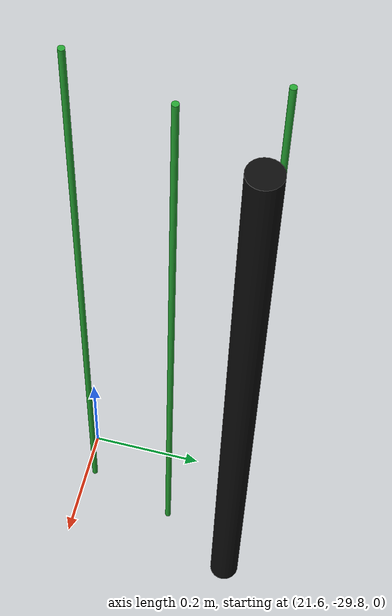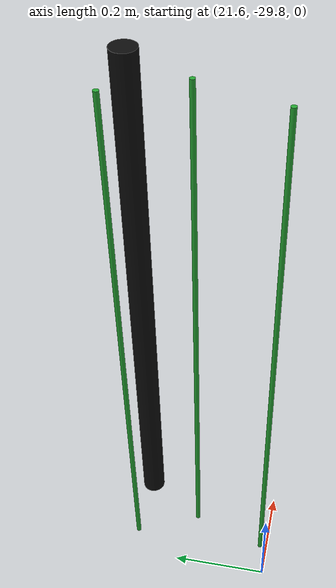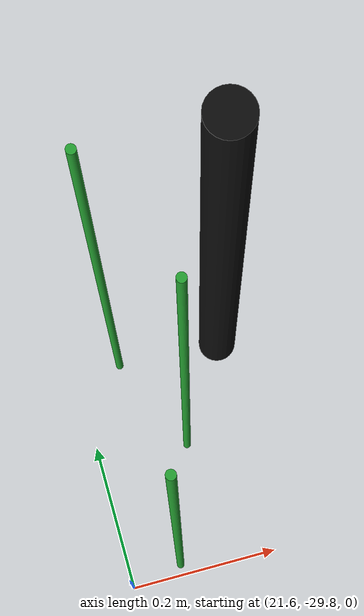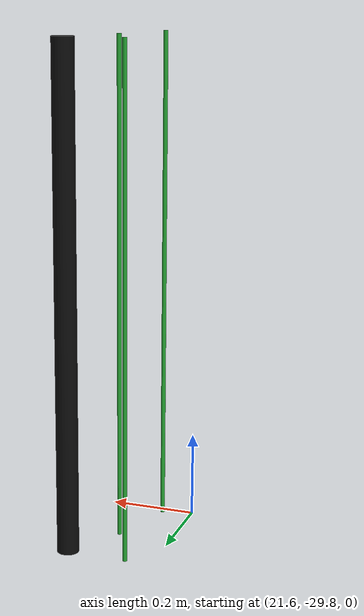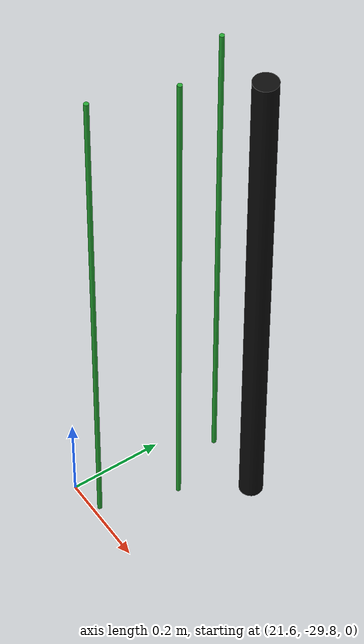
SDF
<sdf version="1.6">
 <world name="default">
  <model name="pole_15">
   <static>1</static>
   <pose>21.8 -29.5 0.575 0 -0 0</pose>
   <link name="link">
    <collision name="collision">
     <geometry><cylinder><length>1.15</length><radius>0.025</radius></cylinder></geometry>
    </collision>
    <visual name="visual">
     <geometry><cylinder><length>1.15</length><radius>0.025</radius></cylinder></geometry>
     <material>
      <script><uri>file://media/materials/scripts/gazebo.material</uri><name>Gazebo/Chrome</name></script>
      <shader type="vertex"><normal_map>__default__</normal_map></shader>
      <emissive>0.1 0.1 0.1 1</emissive>
      <specular>0.01 0.01 0.01 1</specular>
      <ambient>0.5 0.5 0.5 1</ambient>
      <diffuse>0.05 0.05 0.05 1</diffuse>
     </material>
    </visual>
   </link>
  </model>
  <model name="pole_27_clone_clone_145">
   <link name="link">
    <inertial>
     <mass>1</mass>
     <inertia><ixx>1</ixx><ixy>0</ixy><ixz>0</ixz><iyy>1</iyy><iyz>0</iyz><izz>1</izz></inertia>
    </inertial>
    <visual name="visual">
     <geometry><cylinder><length>1.15</length><radius>0.005</radius></cylinder></geometry>
     <material>
      <script><uri>file://media/materials/scripts/gazebo.material</uri><name>Gazebo/Green</name></script>
      <shader type="vertex"><normal_map>__default__</normal_map></shader>
      <emissive>0 0.1 0 1</emissive>
      <specular>0 0.01 0 1</specular>
      <ambient>0 0.5 0 1</ambient>
      <diffuse>0 0.05 0 1</diffuse>
     </material>
    </visual>
    <collision name="collision">
     <geometry><cylinder><radius>0.005</radius><length>1.15</length></cylinder></geometry>
     <surface>
      <friction>
       <ode><mu>1</mu><mu2>1</mu2><fdir1>0 0 0</fdir1><slip1>0</slip1><slip2>0</slip2></ode>
       <torsional>
        <coefficient>1</coefficient>
        <patch_radius>0</patch_radius>
        <surface_radius>0</surface_radius>
        <use_patch_radius>1</use_patch_radius>
        <ode><slip>0</slip></ode>
       </torsional>
      </friction>
      <bounce><restitution_coefficient>0</restitution_coefficient><threshold>1e+06</threshold></bounce>
      <contact>
       <collide_without_contact>0</collide_without_contact>
       <collide_without_contact_bitmask>1</collide_without_contact_bitmask>
       <collide_bitmask>1</collide_bitmask>
       <ode>
        <soft_cfm>0</soft_cfm>
        <soft_erp>0.2</soft_erp>
        <kp>1e+13</kp>
        <kd>1</kd>
        <max_vel>0.01</max_vel>
        <min_depth>0</min_depth>
       </ode>
       <bullet>
        <split_impulse>1</split_impulse>
        <split_impulse_penetration_threshold>-0.01</split_impulse_penetration_threshold>
        <soft_cfm>0</soft_cfm>
        <soft_erp>0.2</soft_erp>
        <kp>1e+13</kp>
        <kd>1</kd>
       </bullet>
      </contact>
     </surface>
    </collision>
   </link>
   <static>1</static>
   <pose>21.661 -29.4953 0.575 0 -0 0</pose>
  </model>
  <model name="pole_27_clone_clone_147">
   <link name="link">
    <inertial>
     <mass>1</mass>
     <inertia><ixx>1</ixx><ixy>0</ixy><ixz>0</ixz><iyy>1</iyy><iyz>0</iyz><izz>1</izz></inertia>
    </inertial>
    <visual name="visual">
     <geometry><cylinder><length>1.15</length><radius>0.005</radius></cylinder></geometry>
     <material>
      <script><uri>file://media/materials/scripts/gazebo.material</uri><name>Gazebo/Green</name></script>
      <shader type="vertex"><normal_map>__default__</normal_map></shader>
      <emissive>0 0.1 0 1</emissive>
      <specular>0 0.01 0 1</specular>
      <ambient>0 0.5 0 1</ambient>
      <diffuse>0 0.05 0 1</diffuse>
     </material>
    </visual>
    <collision name="collision">
     <geometry><cylinder><radius>0.005</radius><length>1.15</length></cylinder></geometry>
     <surface>
      <friction>
       <ode><mu>1</mu><mu2>1</mu2><fdir1>0 0 0</fdir1><slip1>0</slip1><slip2>0</slip2></ode>
       <torsional>
        <coefficient>1</coefficient>
        <patch_radius>0</patch_radius>
        <surface_radius>0</surface_radius>
        <use_patch_radius>1</use_patch_radius>
        <ode><slip>0</slip></ode>
       </torsional>
      </friction>
      <bounce><restitution_coefficient>0</restitution_coefficient><threshold>1e+06</threshold></bounce>
      <contact>
       <collide_without_contact>0</collide_without_contact>
       <collide_without_contact_bitmask>1</collide_without_contact_bitmask>
       <collide_bitmask>1</collide_bitmask>
       <ode>
        <soft_cfm>0</soft_cfm>
        <soft_erp>0.2</soft_erp>
        <kp>1e+13</kp>
        <kd>1</kd>
        <max_vel>0.01</max_vel>
        <min_depth>0</min_depth>
       </ode>
       <bullet>
        <split_impulse>1</split_impulse>
        <split_impulse_penetration_threshold>-0.01</split_impulse_penetration_threshold>
        <soft_cfm>0</soft_cfm>
        <soft_erp>0.2</soft_erp>
        <kp>1e+13</kp>
        <kd>1</kd>
       </bullet>
      </contact>
     </surface>
    </collision>
   </link>
   <static>1</static>
   <pose>21.7224 -29.6269 0.575 0 -0 0</pose>
  </model>
  <model name="pole_27_clone_clone_150">
   <link name="link">
    <inertial>
     <mass>1</mass>
     <inertia><ixx>1</ixx><ixy>0</ixy><ixz>0</ixz><iyy>1</iyy><iyz>0</iyz><izz>1</izz></inertia>
    </inertial>
    <visual name="visual">
     <geometry><cylinder><length>1.15</length><radius>0.005</radius></cylinder></geometry>
     <material>
      <script><uri>file://media/materials/scripts/gazebo.material</uri><name>Gazebo/Green</name></script>
      <shader type="vertex"><normal_map>__default__</normal_map></shader>
      <emissive>0 0.1 0 1</emissive>
      <specular>0 0.01 0 1</specular>
      <ambient>0 0.5 0 1</ambient>
      <diffuse>0 0.05 0 1</diffuse>
     </material>
    </visual>
    <collision name="collision">
     <geometry><cylinder><radius>0.005</radius><length>1.15</length></cylinder></geometry>
     <surface>
      <friction>
       <ode><mu>1</mu><mu2>1</mu2><fdir1>0 0 0</fdir1><slip1>0</slip1><slip2>0</slip2></ode>
       <torsional>
        <coefficient>1</coefficient>
        <patch_radius>0</patch_radius>
        <surface_radius>0</surface_radius>
        <use_patch_radius>1</use_patch_radius>
        <ode><slip>0</slip></ode>
       </torsional>
      </friction>
      <bounce><restitution_coefficient>0</restitution_coefficient><threshold>1e+06</threshold></bounce>
      <contact>
       <collide_without_contact>0</collide_without_contact>
       <collide_without_contact_bitmask>1</collide_without_contact_bitmask>
       <collide_bitmask>1</collide_bitmask>
       <ode>
        <soft_cfm>0</soft_cfm>
        <soft_erp>0.2</soft_erp>
        <kp>1e+13</kp>
        <kd>1</kd>
        <max_vel>0.01</max_vel>
        <min_depth>0</min_depth>
       </ode>
       <bullet>
        <split_impulse>1</split_impulse>
        <split_impulse_penetration_threshold>-0.01</split_impulse_penetration_threshold>
        <soft_cfm>0</soft_cfm>
        <soft_erp>0.2</soft_erp>
        <kp>1e+13</kp>
        <kd>1</kd>
       </bullet>
      </contact>
     </surface>
    </collision>
   </link>
   <static>1</static>
   <pose>21.67 -29.7851 0.575 0 -0 0</pose>
  </model>
 </world>
</sdf>
